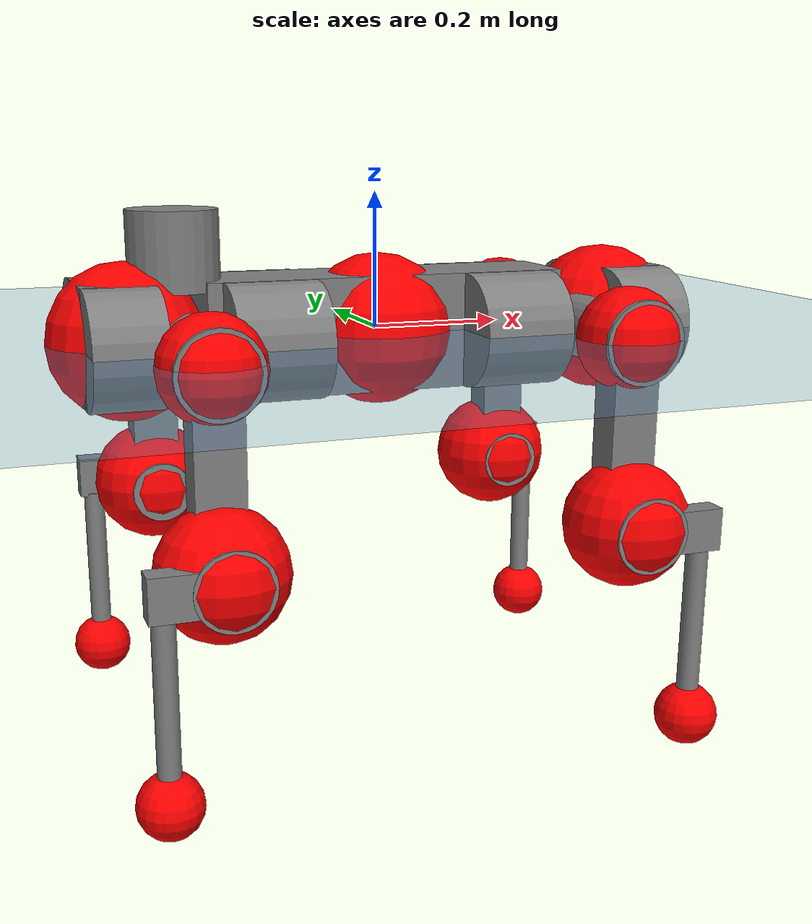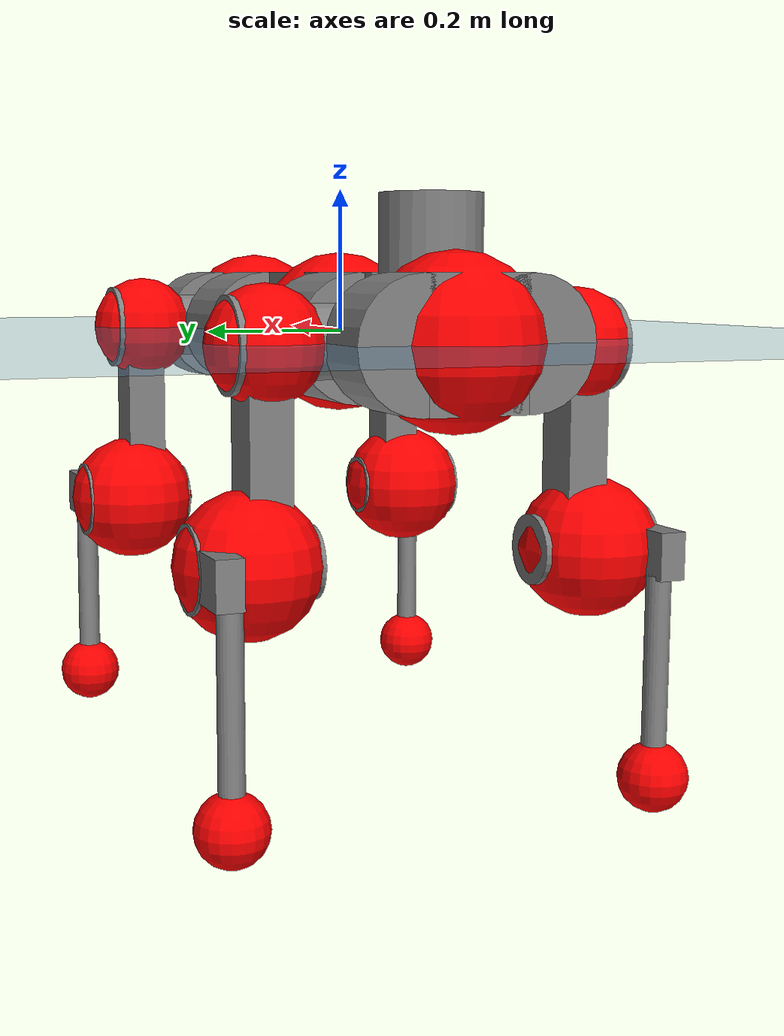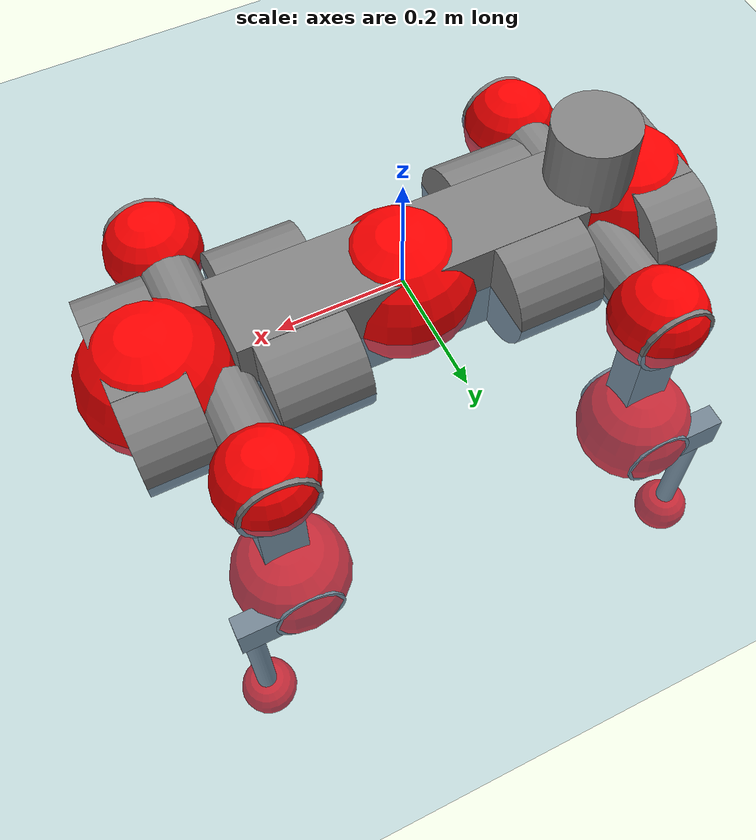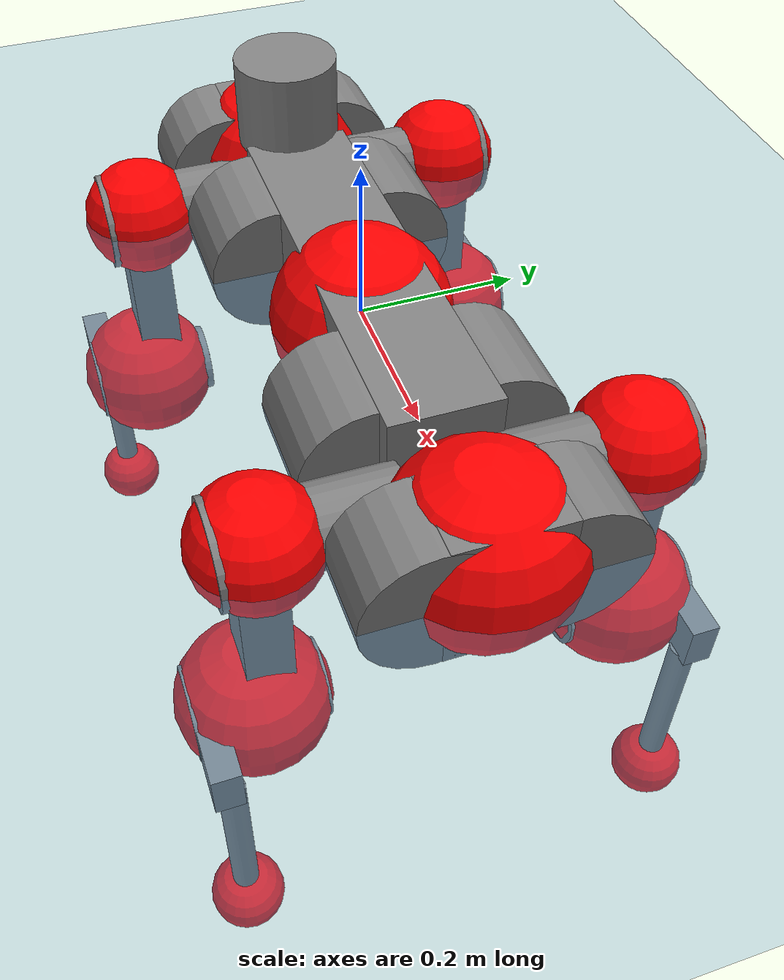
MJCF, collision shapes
<mujoco model="anymal_c">
  <compiler angle="radian" assetdir="assets" balanceinertia="true" inertiafromgeom="false"/>

  <option timestep="0.005" density="1.2" viscosity="2e-05"/>

  <size nkey="1"/>

  <visual>
    <quality shadowsize="8192"/>
    <map shadowclip="0.5"/>
  </visual>

  <default>
    <default class="/">
      <material specular="0" shininess="0.25"/>
      <geom contype="0" conaffinity="0" group="1" solref="-1000 -80"/>
      <site size="0.01 0.005 0.005" group="5"/>
      <general forcelimited="true" forcerange="-80 80" biastype="affine" gainprm="80" biasprm="0 -80 -2"/>
      <default class="anymal_c">
        <joint armature="0.01" damping="0.01" frictionloss="0.1"/>
        <default class="visual">
          <geom type="mesh" group="2"/>
          <default class="visual_zflip"/>
        </default>
        <default class="collision">
          <geom type="cylinder" group="3"/>
          <default class="foot">
            <geom size="0.03 0 0" type="sphere" condim="6" priority="1" friction="0.8 0.02 0.01" solimp="0.015 1 0.03"/>
          </default>
        </default>
      </default>
      <default class="reward_collision_sphere">
        <geom group="5" rgba="1 0 0 1"/>
      </default>
    </default>
  </default>

  <asset>
    <texture type="skybox" colorspace="auto" name="//unnamed_texture_0" builtin="gradient" rgb1="0.95 0.95 0.95" rgb2="0.95 0.95 0.95" width="100" height="600"/>
    <texture type="2d" colorspace="auto" name="texplane" builtin="checker" rgb1="0.345 0.575 0.748" rgb2="0.345 0.575 0.748" markrgb="1 1 1" width="512" height="512"/>
    <texture type="2d" colorspace="linear" name="base" file="base.png"/>
    <texture type="2d" colorspace="linear" name="top_shell" file="top_shell.png"/>
    <texture type="2d" colorspace="linear" name="bottom_shell" file="bottom_shell.png"/>
    <texture type="2d" colorspace="linear" name="remote" file="remote.png"/>
    <texture type="2d" colorspace="linear" name="hatch" file="hatch.png"/>
    <texture type="2d" colorspace="linear" name="handle" file="handle.png"/>
    <texture type="2d" colorspace="linear" name="face" file="face.png"/>
    <texture type="2d" colorspace="linear" name="battery" file="battery.png"/>
    <texture type="2d" colorspace="linear" name="lidar_cage" file="lidar_cage.png"/>
    <texture type="2d" colorspace="linear" name="depth_camera" file="depth_camera.png"/>
    <texture type="2d" colorspace="linear" name="wide_angle_camera" file="wide_angle_camera.png"/>
    <texture type="2d" colorspace="linear" name="lidar" file="lidar.png"/>
    <texture type="2d" colorspace="linear" name="drive" file="drive.png"/>
    <texture type="2d" colorspace="linear" name="hip_l" file="hip_l.png"/>
    <texture type="2d" colorspace="linear" name="shank_l" file="shank_l.png"/>
    <texture type="2d" colorspace="linear" name="foot" file="foot.png"/>
    <texture type="2d" colorspace="linear" name="thigh" file="thigh.png"/>
    <texture type="2d" colorspace="linear" name="shank_r" file="shank_r.png"/>
    <texture type="2d" colorspace="linear" name="hip_r" file="hip_r.png"/>
    <material name="MatPlane" class="/" texture="texplane" texuniform="true" texrepeat="2 2" specular="0.9" shininess="0.5"/>
    <material name="black_plastic" class="/" rgba="0.007 0.007 0.007 1"/>
    <material name="green" class="/" rgba="0.052 0.178 0.033 1"/>
    <material name="red" class="/" rgba="0.178 0.006 0.005 1"/>
    <material name="yellow" class="/" rgba="0.178 0.119 0.006 1"/>
    <material name="lwl" class="/" rgba="0.8 0.8 0.8 1"/>
    <material name="base" class="/" texture="base"/>
    <material name="top_shell" class="/" texture="top_shell"/>
    <material name="bottom_shell" class="/" texture="bottom_shell"/>
    <material name="hip_l" class="/" texture="hip_l"/>
    <material name="thigh" class="/" texture="thigh"/>
    <material name="shank_l" class="/" texture="shank_l"/>
    <material name="foot" class="/" texture="foot"/>
    <material name="hip_r" class="/" texture="hip_r"/>
    <material name="shank" class="/" texture="shank_r"/>
    <material name="hatch" class="/" texture="hatch"/>
    <material name="remote" class="/" texture="remote"/>
    <material name="handle" class="/" texture="handle"/>
    <material name="face" class="/" texture="face"/>
    <material name="depth_camera" class="/" texture="depth_camera"/>
    <material name="wide_angle_camera" class="/" texture="wide_angle_camera"/>
    <material name="battery" class="/" texture="battery"/>
    <material name="lidar_cage" class="/" texture="lidar_cage"/>
    <material name="lidar" class="/" texture="lidar"/>
    <material name="drive" class="/" texture="drive"/>
    <mesh name="base_0" class="/" file="base_0.obj"/>
    <mesh name="base_1" class="/" file="base_1.obj"/>
    <mesh name="base_2" class="/" file="base_2.obj"/>
    <mesh name="base_3" class="/" file="base_3.obj"/>
    <mesh name="base_4" class="/" file="base_4.obj"/>
    <mesh name="base_5" class="/" file="base_5.obj"/>
    <mesh name="top_shell" class="/" file="top_shell.obj"/>
    <mesh name="bottom_shell" class="/" file="bottom_shell.obj"/>
    <mesh name="remote" class="/" file="remote.obj"/>
    <mesh name="handle" class="/" file="handle.obj"/>
    <mesh name="face" class="/" file="face.obj"/>
    <mesh name="wide_angle_camera" class="/" file="wide_angle_camera.obj"/>
    <mesh name="depth_camera" class="/" file="depth_camera.obj"/>
    <mesh name="battery" class="/" file="battery.obj"/>
    <mesh name="lidar_cage" class="/" file="lidar_cage.obj"/>
    <mesh name="lidar" class="/" file="lidar.obj"/>
    <mesh name="drive" class="/" file="drive.obj"/>
    <mesh name="hip_l" class="/" file="hip_l.obj"/>
    <mesh name="thigh" class="/" file="thigh.obj"/>
    <mesh name="shank_l" class="/" file="shank_l.obj"/>
    <mesh name="foot" class="/" file="foot.obj"/>
    <mesh name="hip_r" class="/" file="hip_r.obj"/>
    <mesh name="hatch" class="/" file="hatch.obj"/>
    <mesh name="shank_r" class="/" file="shank_r.obj"/>
  </asset>

  <worldbody>
    <geom name="floor" class="/" size="100 100 0.125" type="plane" group="0" material="MatPlane"/>
    <light name="toplight_shadow" class="/" pos="0 0 5" dir="0.0990148 0.0990148 -0.990148" type="directional" ambient="0.04 0.04 0.04" diffuse="0.55 0.55 0.55" specular="0.12 0.12 0.12"/>
    <light name="toplight_fill" class="/" pos="0 0 5" dir="0.0990148 0.0990148 -0.990148" type="directional" castshadow="false" ambient="0.04 0.04 0.04" diffuse="0.3 0.3 0.3" specular="0.08 0.08 0.08"/>
    <body name="trunk" childclass="anymal_c" pos="0.00394104 0.000350995 -0.00212536" quat="1 0.000682589 0.000105672 -0.000429142">
      <inertial pos="0.0067042 -0.00201694 0.0445357" quat="0.506847 0.495222 0.503657 0.494156" mass="16.6929" diaginertia="0.266862 0.77871 0.164099"/>
      <joint name="//unnamed_joint_0" type="free" armature="0" damping="0" frictionloss="0"/>
      <geom name="//unnamed_geom_1" class="visual" material="green" mesh="base_0"/>
      <geom name="//unnamed_geom_2" class="visual" material="yellow" mesh="base_1"/>
      <geom name="//unnamed_geom_3" class="visual" material="red" mesh="base_2"/>
      <geom name="//unnamed_geom_4" class="visual" material="black_plastic" mesh="base_3"/>
      <geom name="//unnamed_geom_5" class="visual" material="lwl" mesh="base_4"/>
      <geom name="//unnamed_geom_6" class="visual" material="base" mesh="base_5"/>
      <geom name="trunk_1" class="collision" size="0.274654 0.0662957 0.0852373" type="box"/>
      <geom name="trunk_2" class="collision" size="0.0852373 0.0686634" pos="0.183934 0.0730302 0" quat="0.707107 0 0.707107 0"/>
      <geom name="trunk_3" class="collision" size="0.0852373 0.0686634" pos="-0.183934 0.0730302 0" quat="0.707107 0 0.707107 0"/>
      <geom name="trunk_4" class="collision" size="0.0852373 0.0686634" pos="0.183934 -0.0730302 0" quat="0.707107 0 0.707107 0"/>
      <geom name="trunk_5" class="collision" size="0.0852373 0.0686634" pos="-0.183934 -0.0730302 0" quat="0.707107 0 0.707107 0"/>
      <geom name="//unnamed_geom_12" class="visual" material="top_shell" mesh="top_shell"/>
      <geom name="//unnamed_geom_13" class="visual" material="bottom_shell" mesh="bottom_shell"/>
      <geom name="//unnamed_geom_14" class="visual" material="remote" mesh="remote"/>
      <geom name="//unnamed_geom_15" class="visual" material="handle" mesh="handle"/>
      <geom name="//unnamed_geom_16" class="visual" pos="0.350531 0 0" quat="1 0 0 0" material="face" mesh="face"/>
      <geom name="trunk_6" class="collision" size="0.0520895 0.0662957 0.0852373" pos="0.397043 0 0" type="box"/>
      <geom name="//unnamed_geom_18" class="collision" size="0.0852373 0.0520895" pos="0.397043 0.0730302 0" quat="0.707107 0 0.707107 0"/>
      <geom name="//unnamed_geom_19" class="collision" size="0.0852373 0.0520895" pos="0.397043 -0.0730302 0" quat="0.707107 0 0.707107 0"/>
      <geom name="//unnamed_geom_20" class="visual" pos="0.390409 0 -0.0286169" quat="0.965926 0 0.258819 0" material="depth_camera" mesh="depth_camera"/>
      <geom name="//unnamed_geom_21" class="visual" pos="0.433829 0 0.0142557" material="wide_angle_camera" mesh="wide_angle_camera"/>
      <geom name="//unnamed_geom_22" class="visual_zflip" pos="-0.350531 0 0" quat="0 0 0 1" material="face" mesh="face"/>
      <geom name="trunk_7" class="collision" size="0.0520895 0.0662957 0.0852373" pos="-0.397043 0 0" quat="0 0 0 1" type="box"/>
      <geom name="//unnamed_geom_24" class="collision" size="0.0852373 0.0520895" pos="-0.397043 -0.0730302 0" quat="0 -0.707107 0 0.707107"/>
      <geom name="//unnamed_geom_25" class="collision" size="0.0852373 0.0520895" pos="-0.397043 0.0730302 0" quat="0 -0.707107 0 0.707107"/>
      <geom name="//unnamed_geom_26" class="visual" pos="-0.390409 0 -0.0286169" quat="0 -0.258819 0 0.965926" material="depth_camera" mesh="depth_camera"/>
      <geom name="//unnamed_geom_27" class="visual_zflip" pos="-0.433829 0 0.0142557" quat="0 0 0 1" material="wide_angle_camera" mesh="wide_angle_camera"/>
      <geom name="//unnamed_geom_28" class="visual" material="battery" mesh="battery"/>
      <geom name="//unnamed_geom_29" class="visual" pos="0 0.0823674 0.0268536" quat="0.683013 -0.183013 0.183013 0.683013" material="depth_camera" mesh="depth_camera"/>
      <geom name="//unnamed_geom_30" class="visual" pos="0 -0.0823674 0.0268536" quat="0.683013 0.183013 0.183013 -0.683013" material="depth_camera" mesh="depth_camera"/>
      <geom name="//unnamed_geom_31" class="visual" pos="-0.307824 0 0.0699928" quat="1 0 0 0" material="lidar_cage" mesh="lidar_cage"/>
      <geom name="trunk_8" class="collision" size="0.0662957 0.0568249" pos="-0.307824 0 0.12713"/>
      <geom name="//unnamed_geom_33" class="visual" pos="-0.307824 7.76384e-05 0.135415" quat="0.707107 0 0 -0.707107" material="lidar" mesh="lidar"/>
      <geom name="//unnamed_geom_34" class="visual" pos="0.253617 0.10847 1.56985e-09" quat="0.258819 0.965926 0 0" material="drive" mesh="drive"/>
      <geom name="//unnamed_geom_35" class="visual" pos="0.253617 -0.10847 -1.56985e-09" quat="0.258819 -0.965926 0 0" material="drive" mesh="drive"/>
      <geom name="//unnamed_geom_36" class="visual" pos="-0.253617 0.10847 -1.56985e-09" quat="0 0 0.965926 -0.258819" material="drive" mesh="drive"/>
      <geom name="//unnamed_geom_37" class="visual" pos="-0.253617 -0.10847 1.56985e-09" quat="0 0 -0.965926 -0.258819" material="drive" mesh="drive"/>
      <geom name="//unnamed_geom_38" class="visual" pos="0.0980979 0 0.0695167" quat="1 0 0 0" material="hatch" mesh="hatch"/>
      <geom name="//unnamed_geom_39" class="reward_collision_sphere" size="0.11365"/>
      <geom name="//unnamed_geom_40" class="reward_collision_sphere" size="0.11365" pos="0.380552 0 0"/>
      <geom name="//unnamed_geom_41" class="reward_collision_sphere" size="0.11365" pos="-0.380552 0 0"/>
      <site name="imu" pos="0.209852 0.0200163 0.031502" size="0.00947081"/>
      <camera name="track" pos="0 -2.08658 0" quat="0.707107 0.707107 0 0" mode="trackcom"/>
      <camera name="ego_camera" pos="0.380552 0 -0.0380913" quat="-0.5 -0.5 0.5 0.5"/>
      <body name="LF_HIP" pos="0.253277 0.108261 0.00234183" quat="0.258437 0.966026 -0.00168754 0.00107746">
        <inertial pos="0.0527059 -0.0170067 -0.00892051" quat="-0.126335 0.709716 -0.132955 0.680196" mass="2.23477" diaginertia="0.00238861 0.00614022 0.00253093"/>
        <joint name="LF_HAA" pos="0 0 0" axis="0.999878 0.00732047 0.0138168" range="-0.735029 0.536862" armature="0.00896462" damping="0.00569457" frictionloss="0.103922"/>
        <geom name="//unnamed_geom_42" class="visual" pos="0 9.23471e-05 -1.51679e-05" quat="0.258819 -0.965926 0 0" material="hip_l" mesh="hip_l"/>
        <geom name="//unnamed_geom_43" class="visual" pos="0.0506557 -0.0639498 -0.0362483" quat="0.183013 -0.683013 0.683013 0.183013" material="drive" mesh="drive"/>
        <geom name="//unnamed_geom_44" class="collision" size="0.0473541 0.0662957" pos="0.0506557 -0.0124775 -0.00657552" quat="-0.353553 -0.612372 0.612372 -0.353553"/>
        <body name="LF_THIGH" pos="0.0505651 -0.0731829 -0.0392202" quat="0.183072 -0.682999 0.683021 0.182971">
          <inertial pos="0.0221907 0.000602985 -0.236772" quat="0.993299 -0.00203859 -0.0822902 0.081131" mass="2.49941" diaginertia="0.0127304 0.0377087 0.00315485"/>
          <joint name="LF_HFE" pos="0 0 0" axis="0.999975 0.000910377 -0.00700525" range="-3.10722 3.11771" armature="0.0089211" damping="0.0262758" frictionloss="0.101607"/>
          <geom name="//unnamed_geom_45" class="visual" pos="-0.0039318 -6.1956e-06 0" quat="0.707107 0 0 -0.707107" material="thigh" mesh="thigh"/>
          <geom name="//unnamed_geom_46" class="collision" size="0.0615603 0.0378832" pos="0.0338269 0 0" quat="0.5 0.5 -0.5 -0.5"/>
          <geom name="//unnamed_geom_47" class="collision" size="0.0355155 0.0284124 0.133836" pos="0.0253701 0 -0.134571" quat="0.707107 0 0 -0.707107" type="box"/>
          <geom name="//unnamed_geom_48" class="visual" pos="0.0848209 0 -0.271401" quat="1 0 0 0" material="drive" mesh="drive"/>
          <geom name="//unnamed_geom_49" class="collision" size="0.0473541 0.0662957" pos="0.0256238 0 -0.271401" quat="0.707107 0 0.707107 0"/>
          <geom name="//unnamed_geom_50" class="reward_collision_sphere" size="0.0757665" pos="0.0211418 0 0"/>
          <body name="LF_SHANK" pos="0.0852895 0.00171212 -0.27073" quat="1 1.22142e-05 -2.60807e-05 5.25295e-05">
            <inertial pos="0.00530951 -0.0626753 -0.0759356" quat="0.992235 -0.120817 0.0107744 -0.0275101" mass="0.515516" diaginertia="0.00426395 0.0116137 0.000876276"/>
            <joint name="LF_KFE" pos="0 0 0" axis="0.999899 -0.00866432 0.0112351" range="-3.16403 3.18028" armature="0.00892137" damping="0.0102153" frictionloss="0.0853927"/>
            <geom name="//unnamed_geom_51" class="visual" pos="-0.00128207 -0.00683609 0" quat="0.707107 0 0 -0.707107" material="shank_l" mesh="shank_l"/>
            <geom name="LF_kfe_act" class="collision" size="0.0568249 0.0189416" pos="0.0169134 0 0" quat="0.5 0.5 -0.5 -0.5"/>
            <geom name="//unnamed_geom_53" class="collision" size="0.0544562 0.031964 0.0179945" pos="0.0169134 -0.059988 0" quat="0.5 0.5 -0.5 -0.5" type="box"/>
            <geom name="//unnamed_geom_54" class="visual" pos="0.0110363 -0.0939602 -0.321843" quat="0.382683 0 0 -0.92388" material="foot" mesh="foot"/>
            <geom name="LF_calf" class="collision" size="0.0165739 0.133777" pos="0.011036 -0.0917572 -0.160922" quat="0.707107 0 0 -0.707107"/>
            <geom name="LF_foot" class="foot" size="0.0333819" pos="0.011036 -0.0917572 -0.300417" quat="0.707107 0 0 -0.707107"/>
            <geom name="//unnamed_geom_57" class="reward_collision_sphere" size="0.0947081" pos="-0.0422836 0 0"/>
            <geom name="//unnamed_geom_58" class="reward_collision_sphere" size="0.0473541" pos="0.011036 -0.0917572 -0.300417"/>
            <site name="LF_foot" class="foot" pos="0.011036 -0.0917572 -0.300417" quat="0.707107 0 0 -0.707107" size="0.00947081"/>
          </body>
        </body>
      </body>
      <body name="RF_HIP" pos="0.254081 -0.111026 -0.000186359" quat="0.258982 -0.965882 -0.000293896 -0.000777687">
        <inertial pos="0.0465985 0.0189719 -0.00831528" quat="0.135669 0.678119 0.126591 0.711142" mass="2.18222" diaginertia="0.00245838 0.00587285 0.00255725"/>
        <joint name="RF_HAA" pos="0 0 0" axis="0.999999 0.0010331 -0.00123227" range="-0.473591 0.712693" armature="0.0114672" damping="0.0101485" frictionloss="0.0751845"/>
        <geom name="//unnamed_geom_59" class="visual" pos="0 -9.23464e-05 -1.51679e-05" quat="0.258819 0.965926 0 0" material="hip_r" mesh="hip_r"/>
        <geom name="//unnamed_geom_60" class="visual" pos="0.0506557 0.0639498 -0.0362483" quat="0.183013 0.683013 0.683013 -0.183013" material="drive" mesh="drive"/>
        <geom name="//unnamed_geom_61" class="collision" size="0.0473541 0.0662957" pos="0.0506557 0.0124775 -0.00657552" quat="-0.353553 0.612372 0.612372 0.353553"/>
        <body name="RF_THIGH" pos="0.0531911 0.0740556 -0.0426979" quat="0.183657 0.682901 0.683381 -0.181401">
          <inertial pos="0.0266704 0.00458662 -0.236421" quat="0.991872 -0.00807411 -0.0899182 0.0896583" mass="2.69008" diaginertia="0.0125844 0.0350653 0.00324511"/>
          <joint name="RF_HFE" pos="0 0 0" axis="0.999875 0.00468877 0.0151071" stiffness="0.00687052" range="-3.1931 3.09687" armature="0.00934922" damping="0.00814415" frictionloss="0.103805"/>
          <geom name="//unnamed_geom_62" class="visual" pos="-0.0039318 -6.1956e-06 0" quat="0.707107 0 0 -0.707107" material="thigh" mesh="thigh"/>
          <geom name="//unnamed_geom_63" class="collision" size="0.0615603 0.0378832" pos="0.0338269 0 0" quat="0.5 0.5 0.5 0.5"/>
          <geom name="//unnamed_geom_64" class="collision" size="0.0355155 0.0284124 0.133836" pos="0.0253701 0 -0.134571" quat="0.707107 0 0 0.707107" type="box"/>
          <geom name="//unnamed_geom_65" class="visual" pos="0.0848209 0 -0.271401" quat="1 0 0 0" material="drive" mesh="drive"/>
          <geom name="//unnamed_geom_66" class="collision" size="0.0473541 0.0662957" pos="0.0256238 0 -0.271401" quat="0.707107 0 0.707107 0"/>
          <geom name="//unnamed_geom_67" class="reward_collision_sphere" size="0.0757665" pos="0.0211418 0 0"/>
          <body name="RF_SHANK" pos="0.0849729 0.000391554 -0.272173" quat="1 0.00034383 -0.000169281 0.000331562">
            <inertial pos="0.00597106 0.0641566 -0.0791136" quat="0.992127 0.12213 -0.00866568 0.0263188" mass="0.503986" diaginertia="0.00417951 0.0112445 0.000860783"/>
            <joint name="RF_KFE" pos="0 0 0" axis="0.99996 0.00884651 0.00128175" range="-3.15221 3.10409" armature="0.00989977" damping="0.0124715" frictionloss="0.106659"/>
            <geom name="//unnamed_geom_68" class="visual" pos="-0.00128207 0.00683607 0" quat="0.707107 0 0 0.707107" material="shank" mesh="shank_r"/>
            <geom name="RF_kfe_act" class="collision" size="0.0568249 0.0189416" pos="0.0169134 0 0" quat="0.5 0.5 0.5 0.5"/>
            <geom name="//unnamed_geom_70" class="collision" size="0.0544562 0.031964 0.0179945" pos="0.0169134 0.059988 0" quat="0.5 0.5 0.5 0.5" type="box"/>
            <geom name="//unnamed_geom_71" class="visual" pos="0.0110357 0.0939602 -0.321843" quat="0.382683 0 0 0.92388" material="foot" mesh="foot"/>
            <geom name="RF_calf" class="collision" size="0.0165739 0.133777" pos="0.011036 0.0917572 -0.160922" quat="0.707107 0 0 0.707107"/>
            <geom name="RF_foot" class="foot" size="0.0308413" pos="0.011036 0.0917572 -0.300417" quat="0.707107 0 0 0.707107"/>
            <geom name="//unnamed_geom_74" class="reward_collision_sphere" size="0.0947081" pos="-0.0422836 0 0"/>
            <geom name="//unnamed_geom_75" class="reward_collision_sphere" size="0.0473541" pos="0.011036 0.0917572 -0.300417"/>
            <site name="RF_foot" class="foot" pos="0.011036 0.0917572 -0.300417" quat="0.707107 0 0 0.707107" size="0.00947081"/>
          </body>
        </body>
      </body>
      <body name="LH_HIP" pos="-0.254512 0.111794 0.000849063" quat="-0.00223661 0.00117469 0.96563 -0.259907">
        <inertial pos="0.0440095 0.0131623 -0.00659744" quat="0.135542 0.678724 0.127826 0.710368" mass="2.44979" diaginertia="0.00254794 0.00606261 0.00251044"/>
        <joint name="LH_HAA" pos="0 0 0" axis="0.999954 -0.00810428 0.00506099" range="-0.542195 0.764002" armature="0.00956769" damping="0.00976382" frictionloss="0.104996"/>
        <geom name="//unnamed_geom_76" class="visual" pos="0 -9.23464e-05 -1.51679e-05" quat="-0.258819 -0.965926 0 0" material="hip_r" mesh="hip_r"/>
        <geom name="//unnamed_geom_77" class="visual" pos="0.0506557 0.0639498 -0.0362483" quat="0.183013 0.683013 0.683013 -0.183013" material="drive" mesh="drive"/>
        <geom name="//unnamed_geom_78" class="collision" size="0.0473541 0.0662957" pos="0.0506557 0.0124775 -0.00657552" quat="-0.353553 0.612372 0.612372 0.353553"/>
        <body name="LH_THIGH" pos="0.0538873 0.0776831 -0.0409074" quat="0.184194 0.682617 0.683419 -0.181784">
          <inertial pos="0.0265679 -0.00235722 -0.235994" quat="0.992646 0.0030242 -0.074183 0.0956127" mass="2.6806" diaginertia="0.0135295 0.0376445 0.0033836"/>
          <joint name="LH_HFE" pos="0 0 0" axis="0.999999 -0.000674909 -0.0012907" range="-3.18537 3.15318" armature="0.00947555" damping="0.0258312" frictionloss="0.0837576"/>
          <geom name="//unnamed_geom_79" class="visual" pos="-0.0039318 -6.1956e-06 0" quat="0.707107 0 0 -0.707107" material="thigh" mesh="thigh"/>
          <geom name="//unnamed_geom_80" class="collision" size="0.0615603 0.0378832" pos="0.0338269 0 0" quat="0.5 0.5 -0.5 -0.5"/>
          <geom name="//unnamed_geom_81" class="collision" size="0.0355155 0.0284124 0.133836" pos="0.0253701 0 -0.134571" quat="0.707107 0 0 -0.707107" type="box"/>
          <geom name="//unnamed_geom_82" class="visual" pos="0.0848209 0 -0.271401" quat="1 0 0 0" material="drive" mesh="drive"/>
          <geom name="//unnamed_geom_83" class="collision" size="0.0473541 0.0662957" pos="0.0256238 0 -0.271401" quat="0.707107 0 0.707107 0"/>
          <geom name="//unnamed_geom_84" class="reward_collision_sphere" size="0.0757665" pos="0.0211418 0 0"/>
          <body name="LH_SHANK" pos="0.0876083 0.00056697 -0.270272" quat="1 0.00048869 5.22079e-05 -2.26185e-05">
            <inertial pos="0.00484775 0.0641387 -0.0759383" quat="0.992899 0.116036 -0.00227326 0.0261321" mass="0.497548" diaginertia="0.00439412 0.0113174 0.000860234"/>
            <joint name="LH_KFE" pos="0 0 0" axis="0.999962 -0.0085516 -0.00140469" range="-3.19629 3.14377" armature="0.00876874" damping="0.0228319" frictionloss="0.0956263"/>
            <geom name="//unnamed_geom_85" class="visual" pos="-0.00128207 0.00683607 0" quat="-0.707107 0 0 -0.707107" material="shank" mesh="shank_r"/>
            <geom name="LH_kfe_act" class="collision" size="0.0568249 0.0189416" pos="0.0169134 0 0" quat="0.5 0.5 -0.5 -0.5"/>
            <geom name="//unnamed_geom_87" class="collision" size="0.0544562 0.031964 0.0179945" pos="0.0169134 0.059988 0" quat="0.5 0.5 -0.5 -0.5" type="box"/>
            <geom name="//unnamed_geom_88" class="visual" pos="0.0110357 0.0939602 -0.321843" quat="-0.382683 0 0 -0.92388" material="foot" mesh="foot"/>
            <geom name="LH_calf" class="collision" size="0.0165739 0.133777" pos="0.011036 0.0917572 -0.160922" quat="0.707107 0 0 -0.707107"/>
            <geom name="LH_foot" class="foot" size="0.0285261" pos="0.011036 0.0917572 -0.300417" quat="0.707107 0 0 -0.707107"/>
            <geom name="//unnamed_geom_91" class="reward_collision_sphere" size="0.0947081" pos="-0.0422836 0 0"/>
            <geom name="//unnamed_geom_92" class="reward_collision_sphere" size="0.0473541" pos="0.011036 0.0917572 -0.300417"/>
            <site name="LH_foot" class="foot" pos="0.011036 0.0917572 -0.300417" quat="0.707107 0 0 -0.707107" size="0.00947081"/>
          </body>
        </body>
      </body>
      <body name="RH_HIP" pos="-0.25336 -0.1046 -0.0018724" quat="-2.87055e-06 3.09155e-06 -0.965937 -0.258778">
        <inertial pos="0.0476756 -0.0173932 -0.00815866" quat="-0.117613 0.707493 -0.12634 0.685317" mass="2.38614" diaginertia="0.0025715 0.00613552 0.00252291"/>
        <joint name="RH_HAA" pos="0 0 0" axis="0.999965 0.0083167 -0.000761808" range="-0.68121 0.476074" armature="0.00752091" damping="0" frictionloss="0.106115"/>
        <geom name="//unnamed_geom_93" class="visual" pos="0 9.23471e-05 -1.51679e-05" quat="-0.258819 0.965926 0 0" material="hip_l" mesh="hip_l"/>
        <geom name="//unnamed_geom_94" class="visual" pos="0.0506557 -0.0639498 -0.0362483" quat="-0.183013 0.683013 -0.683013 -0.183013" material="drive" mesh="drive"/>
        <geom name="//unnamed_geom_95" class="collision" size="0.0473541 0.0662957" pos="0.0506557 -0.0124775 -0.00657552" quat="0.353553 0.612372 -0.612372 0.353553"/>
        <body name="RH_THIGH" pos="0.0515061 -0.0777843 -0.0375901" quat="-0.181989 0.683428 -0.682874 -0.183001">
          <inertial pos="0.0257472 -0.00152503 -0.233018" quat="0.993002 -0.00621094 -0.0788188 0.0877266" mass="2.48686" diaginertia="0.0124042 0.0362989 0.00330568"/>
          <joint name="RH_HFE" pos="0 0 0" axis="0.999923 -0.0102778 0.00698141" stiffness="0.00170564" range="-3.07904 3.15189" armature="0.00991789" damping="0" frictionloss="0.0828305"/>
          <geom name="//unnamed_geom_96" class="visual" pos="-0.0039318 -6.1956e-06 0" quat="0.707107 0 0 -0.707107" material="thigh" mesh="thigh"/>
          <geom name="//unnamed_geom_97" class="collision" size="0.0615603 0.0378832" pos="0.0338269 0 0" quat="0.5 0.5 0.5 0.5"/>
          <geom name="//unnamed_geom_98" class="collision" size="0.0355155 0.0284124 0.133836" pos="0.0253701 0 -0.134571" quat="0.707107 0 0 0.707107" type="box"/>
          <geom name="//unnamed_geom_99" class="visual" pos="0.0848209 0 -0.271401" quat="1 0 0 0" material="drive" mesh="drive"/>
          <geom name="//unnamed_geom_100" class="collision" size="0.0473541 0.0662957" pos="0.0256238 0 -0.271401" quat="0.707107 0 0.707107 0"/>
          <geom name="//unnamed_geom_101" class="reward_collision_sphere" size="0.0757665" pos="0.0211418 0 0"/>
          <body name="RH_SHANK" pos="0.0903953 -0.000760172 -0.271891" quat="0.999999 -0.000705196 0.000744691 -0.000246801">
            <inertial pos="-0.000510928 -0.0634352 -0.0758555" quat="0.992248 -0.122886 -0.00411842 -0.0180609" mass="0.495212" diaginertia="0.00469082 0.012123 0.000923236"/>
            <joint name="RH_KFE" pos="0 0 0" axis="0.999758 0.0141796 -0.0168311" range="-3.15064 3.03116" armature="0.0101082" damping="0.0171016" frictionloss="0.10658"/>
            <geom name="//unnamed_geom_102" class="visual" pos="-0.00128207 -0.00683609 0" quat="0.707107 0 0 -0.707107" material="shank_l" mesh="shank_l"/>
            <geom name="RH_kfe_act" class="collision" size="0.0568249 0.0189416" pos="0.0169134 0 0" quat="0.5 0.5 0.5 0.5"/>
            <geom name="//unnamed_geom_104" class="collision" size="0.0544562 0.031964 0.0179945" pos="0.0169134 -0.059988 0" quat="0.5 0.5 0.5 0.5" type="box"/>
            <geom name="//unnamed_geom_105" class="visual" pos="0.0110363 -0.0939602 -0.321843" quat="0.382683 0 0 -0.92388" material="foot" mesh="foot"/>
            <geom name="RH_calf" class="collision" size="0.0165739 0.133777" pos="0.011036 -0.0917572 -0.160922" quat="0.707107 0 0 0.707107"/>
            <geom name="RH_foot" class="foot" size="0.0250062" pos="0.011036 -0.0917572 -0.300417" quat="0.707107 0 0 0.707107"/>
            <geom name="//unnamed_geom_108" class="reward_collision_sphere" size="0.0947081" pos="-0.0422836 0 0"/>
            <geom name="//unnamed_geom_109" class="reward_collision_sphere" size="0.0473541" pos="0.011036 -0.0917572 -0.300417"/>
            <site name="RH_foot" class="foot" pos="0.011036 -0.0917572 -0.300417" quat="0.707107 0 0 0.707107" size="0.00947081"/>
          </body>
        </body>
      </body>
    </body>
  </worldbody>

  <contact>
    <pair class="/" geom1="floor" geom2="LF_foot" name="//unnamed_contact_0"/>
    <pair class="/" geom1="floor" geom2="RF_foot" name="//unnamed_contact_1"/>
    <pair class="/" geom1="floor" geom2="LH_foot" name="//unnamed_contact_2"/>
    <pair class="/" geom1="floor" geom2="RH_foot" name="//unnamed_contact_3"/>
  </contact>

  <actuator>
    <general name="LF_HAA" class="/" joint="LF_HAA" forcerange="-76.9245 76.9245" gainprm="77.0009" biasprm="0 -77.0009 -2.1558"/>
    <general name="LF_HFE" class="/" joint="LF_HFE" forcerange="-72.2067 72.2067" gainprm="77.0009" biasprm="0 -77.0009 -2.1558"/>
    <general name="LF_KFE" class="/" joint="LF_KFE" forcerange="-75.3678 75.3678" gainprm="77.0009" biasprm="0 -77.0009 -2.1558"/>
    <general name="RF_HAA" class="/" joint="RF_HAA" forcerange="-61.9625 61.9625" gainprm="77.0009" biasprm="0 -77.0009 -2.1558"/>
    <general name="RF_HFE" class="/" joint="RF_HFE" forcerange="-75.106 75.106" gainprm="77.0009" biasprm="0 -77.0009 -2.1558"/>
    <general name="RF_KFE" class="/" joint="RF_KFE" forcerange="-78.2582 78.2582" gainprm="77.0009" biasprm="0 -77.0009 -2.1558"/>
    <general name="LH_HAA" class="/" joint="LH_HAA" forcerange="-73.2992 73.2992" gainprm="77.0009" biasprm="0 -77.0009 -2.1558"/>
    <general name="LH_HFE" class="/" joint="LH_HFE" forcerange="-72.9508 72.9508" gainprm="77.0009" biasprm="0 -77.0009 -2.1558"/>
    <general name="LH_KFE" class="/" joint="LH_KFE" forcerange="-79.91 79.91" gainprm="77.0009" biasprm="0 -77.0009 -2.1558"/>
    <general name="RH_HAA" class="/" joint="RH_HAA" forcerange="-82.477 82.477" gainprm="77.0009" biasprm="0 -77.0009 -2.1558"/>
    <general name="RH_HFE" class="/" joint="RH_HFE" forcerange="-69.5987 69.5987" gainprm="77.0009" biasprm="0 -77.0009 -2.1558"/>
    <general name="RH_KFE" class="/" joint="RH_KFE" forcerange="-67.1306 67.1306" gainprm="77.0009" biasprm="0 -77.0009 -2.1558"/>
  </actuator>

  <sensor>
    <gyro site="imu" name="imu_angular_velocity"/>
    <velocimeter site="imu" name="imu_linear_velocity"/>
    <framelinvel objtype="site" objname="LF_foot" name="LF_foot_global_linear_velocity"/>
    <framelinvel objtype="site" objname="RF_foot" name="RF_foot_global_linear_velocity"/>
    <framelinvel objtype="site" objname="LH_foot" name="LH_foot_global_linear_velocity"/>
    <framelinvel objtype="site" objname="RH_foot" name="RH_foot_global_linear_velocity"/>
  </sensor>

  <keyframe>
    <key name="home" qpos="0 0 0.55 1 0 0 0 0 0.4 -0.8 0 -0.4 0.8 0 -0.4 0.8 0 0.4 -0.8"/>
  </keyframe>
</mujoco>
